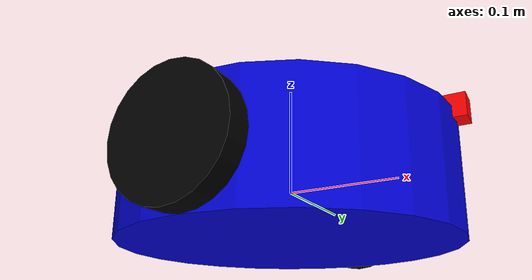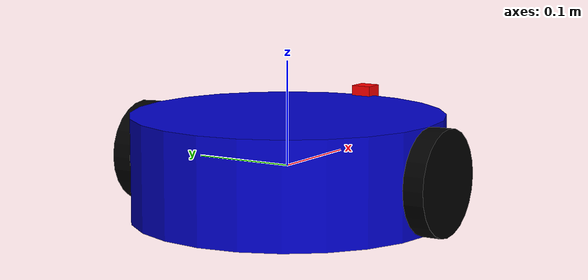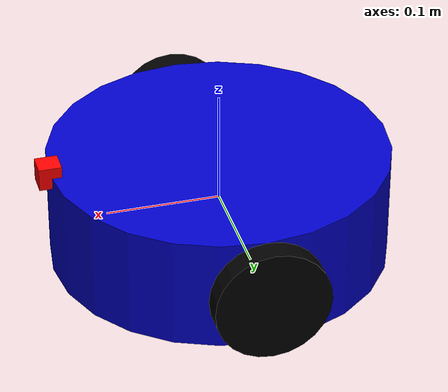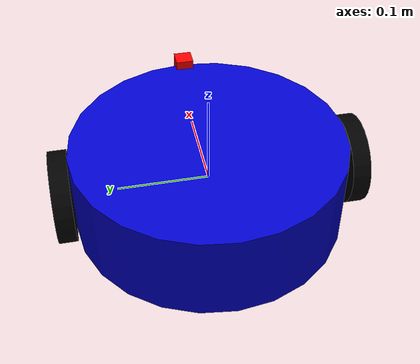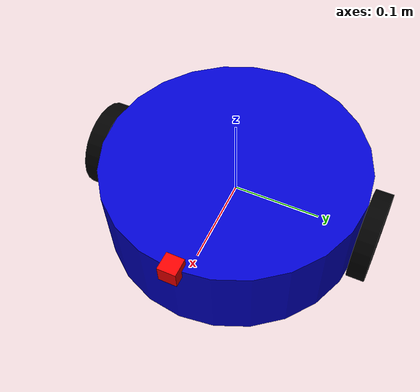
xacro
<?xml version="1.0"?>
<robot xmlns:xacro="http://www.ros.org/wiki/xacro" name="mobile_robot">

  <xacro:include filename="$(find my_robot_description)/xacro/mobile_base.xacro"/>

  <!-- Add Gazebo Plugins -->
  <gazebo>
    <plugin name="differential_drive_controller" filename="libgazebo_ros_diff_drive.so">
      <ros>
        <namespace>/</namespace>
      </ros>
      <left_joint>left_wheel_joint</left_joint>
      <right_joint>right_wheel_joint</right_joint>
      <wheel_separation>${2*(base_radius + 0.01)}</wheel_separation>
      <wheel_radius>${wheel_radius}</wheel_radius>
      <wheel_torque>20</wheel_torque>
      <wheel_acceleration>1.0</wheel_acceleration>
      <command_topic>cmd_vel</command_topic>
      <odometry_topic>odom</odometry_topic>
      <odometry_frame>odom</odometry_frame>
      <robot_base_frame>base_link</robot_base_frame>
    </plugin>
  </gazebo>

  <gazebo reference="range_sensor_link">
    <sensor type="ray" name="front_range_sensor">
      <pose>0 0 0 0 0 0</pose>
      <visualize>true</visualize>
      <update_rate>10</update_rate>
      <ray>
        <scan>
          <horizontal>
            <samples>1</samples>
            <resolution>1</resolution>
            <min_angle>0</min_angle>
            <max_angle>0</max_angle>
          </horizontal>
          <vertical>
            <samples>1</samples>
            <resolution>1</resolution>
            <min_angle>0</min_angle>
            <max_angle>0</max_angle>
          </vertical>
        </scan>
        <range>
          <min>0.1</min>
          <max>5.0</max>
          <resolution>0.02</resolution>
        </range>
      </ray>
      <plugin name="gazebo_ros_ray_sensor_controller" filename="libgazebo_ros_ray_sensor.so">
        <ros>
          <argument>~/out</argument>
          <namespace>range_sensor</namespace>
        </ros>
        <output_type>sensor_msgs/Range</output_type>
        <frame_name>range_sensor_link</frame_name>
      </plugin>
    </sensor>
  </gazebo>

</robot>

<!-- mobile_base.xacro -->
<robot xmlns:xacro="http://www.ros.org/wiki/xacro">

  <xacro:property name="base_radius" value="0.15" />
  <xacro:property name="base_height" value="0.1" />
  <xacro:property name="wheel_radius" value="0.05" />
  <xacro:property name="wheel_width" value="0.02" />
  <xacro:property name="base_mass" value="5.0" />
  <xacro:property name="wheel_mass" value="0.1" />

  <!-- BASE LINK -->
  <link name="base_link">
    <visual>
      <geometry><cylinder radius="${base_radius}" length="${base_height}"/></geometry>
      <material name="blue">
        <color rgba="0 0 0.8 1"/>
      </material>
    </visual>
    <collision>
      <geometry><cylinder radius="${base_radius}" length="${base_height}"/></geometry>
    </collision>
    <inertial>
      <mass value="${base_mass}"/>
      <inertia ixx="${(base_mass/12)*(3*base_radius*base_radius + base_height*base_height)}"
               ixy="0.0" ixz="0.0"
               iyy="${(base_mass/12)*(3*base_radius*base_radius + base_height*base_height)}"
               iyz="0.0"
               izz="${(base_mass/2)*base_radius*base_radius}"/>
    </inertial>
  </link>

  <!-- WHEEL MACRO -->
  <xacro:macro name="wheel" params="prefix parent_link x_offset y_offset z_offset">
    <link name="${prefix}_wheel_link">
      <visual>
        <geometry><cylinder radius="${wheel_radius}" length="${wheel_width}"/></geometry>
        <material name="black"><color rgba="0 0 0 1"/></material>
      </visual>
      <collision>
        <geometry><cylinder radius="${wheel_radius}" length="${wheel_width}"/></geometry>
      </collision>
      <inertial>
        <mass value="${wheel_mass}"/>
        <inertia ixx="${(wheel_mass/12)*(3*wheel_radius*wheel_radius + wheel_width*wheel_width)}"
                 ixy="0.0" ixz="0.0"
                 iyy="${(wheel_mass/12)*(3*wheel_radius*wheel_radius + wheel_width*wheel_width)}"
                 iyz="0.0"
                 izz="${(wheel_mass/2)*wheel_radius*wheel_radius}"/>
      </inertial>
    </link>

    <joint name="${prefix}_wheel_joint" type="continuous">
      <parent link="${parent_link}"/>
      <child link="${prefix}_wheel_link"/>
      <origin xyz="${x_offset} ${y_offset} ${z_offset}" rpy="1.57075 0 0"/> <!-- Rotate wheel to be vertical -->
      <axis xyz="0 0 1"/>
    </joint>
  </xacro:macro>

  <!-- Add wheels -->
  <xacro:wheel prefix="left" parent_link="base_link" x_offset="0" y_offset="${base_radius + 0.01}" z_offset="0"/>
  <xacro:wheel prefix="right" parent_link="base_link" x_offset="0" y_offset="${-(base_radius + 0.01)}" z_offset="0"/>

  <!-- SENSOR LINK - simple range sensor -->
  <link name="range_sensor_link">
    <visual>
      <geometry><box size="0.02 0.02 0.02"/></geometry>
      <material name="red"><color rgba="1 0 0 1"/></material>
    </visual>
    <collision>
      <geometry><box size="0.02 0.02 0.02"/></geometry>
    </collision>
    <inertial>
      <mass value="0.01"/>
      <inertia ixx="0.000001" ixy="0.0" ixz="0.0" iyy="0.000001" iyz="0.0" izz="0.000001"/>
    </inertial>
  </link>
  <joint name="range_sensor_joint" type="fixed">
    <parent link="base_link"/>
    <child link="range_sensor_link"/>
    <origin xyz="${base_radius} 0 ${base_height/2}" rpy="0 0 0"/> <!-- Front of base -->
  </joint>

</robot>
